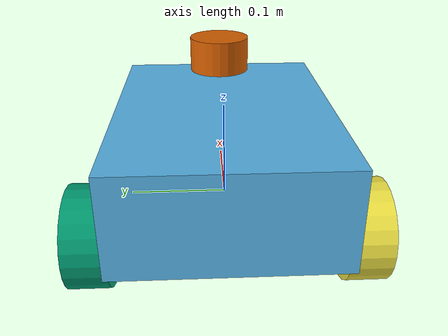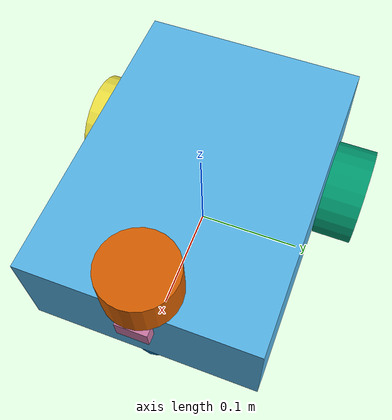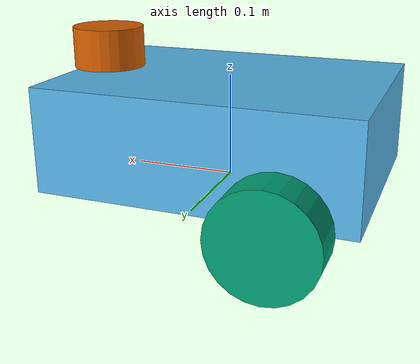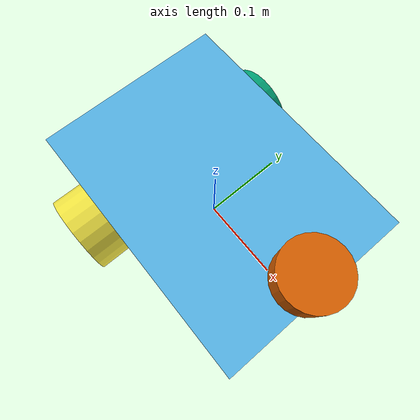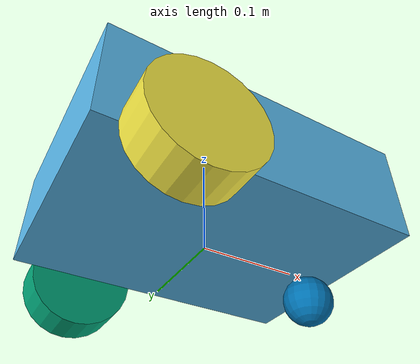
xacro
<?xml version="1.0"?>
<robot name="warehouse_robot" xmlns:xacro="http://www.ros.org/wiki/xacro">

<link name="base_footprint"/>

  <joint name="base_footprint_joint" type="fixed">
    <parent link="base_footprint"/>
    <child link="base_link"/>
    <origin xyz="0 0 0.05" rpy="0 0 0"/>
  </joint>

<link name="base_link">

    <visual>
      <geometry>
        <box size="0.30 0.22 0.10"/>
      </geometry>
    </visual>

    <collision>
      <geometry>
        <box size="0.30 0.22 0.10"/>
      </geometry>
    </collision>

    <inertial>
      <mass value="2.5"/>
      <origin xyz="0 0 0" rpy="0 0 0"/>
      <inertia ixx="0.01217" ixy="0.0" ixz="0.0" iyy="0.02083" iyz="0.0" izz="0.02883"/>
    </inertial>

  </link>

<link name="left_wheel_link">
    <visual>
      <origin xyz="0 0 0" rpy="1.5708 0 0"/>
      <geometry>
        <cylinder radius="0.05" length="0.04"/>
      </geometry>
    </visual>
    <collision>
      <origin xyz="0 0 0" rpy="1.5708 0 0"/>
      <geometry>
        <cylinder radius="0.05" length="0.04"/>
      </geometry>
    </collision>
    <inertial>
      <mass value="0.3"/>
      <origin xyz="0 0 0" rpy="0 0 0"/>
      <inertia ixx="0.0003" ixy="0.0" ixz="0.0" iyy="0.0003" iyz="0.0" izz="0.00038"/>
    </inertial>
  </link>

  <joint name="left_wheel_joint" type="continuous">
    <parent link="base_link"/>
    <child link="left_wheel_link"/>
    <origin xyz="-0.08 0.13 -0.05" rpy="0 0 0"/>
    <axis xyz="0 1 0"/>
  </joint>

<link name="right_wheel_link">
    <visual>
      <origin xyz="0 0 0" rpy="-1.5708 0 0"/>
      <geometry>
        <cylinder radius="0.05" length="0.04"/>
      </geometry>
    </visual>
    <collision>
      <origin xyz="0 0 0" rpy="-1.5708 0 0"/>
      <geometry>
        <cylinder radius="0.05" length="0.04"/>
      </geometry>
    </collision>
    <inertial>
      <mass value="0.3"/>
      <origin xyz="0 0 0" rpy="0 0 0"/>
      <inertia ixx="0.0003" ixy="0.0" ixz="0.0" iyy="0.0003" iyz="0.0" izz="0.00038"/>
    </inertial>
  </link>

  <joint name="right_wheel_joint" type="continuous">
    <parent link="base_link"/>
    <child link="right_wheel_link"/>
    <origin xyz="-0.08 -0.13 -0.05" rpy="0 0 0"/>
    <axis xyz="0 1 0"/>
  </joint>

<link name="caster_wheel_link">
    <visual>
      <geometry>
        <sphere radius="0.025"/>
      </geometry>
    </visual>
    <collision>
      <geometry>
        <sphere radius="0.025"/>      </geometry>
    </collision>
    <inertial>
      <mass value="0.05"/>
      <origin xyz="0 0 0" rpy="0 0 0"/>
      <inertia ixx="0.0001" ixy="0.0" ixz="0.0" iyy="0.0001" iyz="0.0" izz="0.0001"/>
    </inertial>
  </link>

  <joint name="caster_wheel_joint" type="fixed">
    <parent link="base_link"/>
    <child link="caster_wheel_link"/>
    <origin xyz="0.12 0 -0.075" rpy="0 0 0"/>
  </joint>

<link name="lidar_link">
    <visual>
      <geometry>
        <cylinder radius="0.035" length="0.04"/>
      </geometry>
    </visual>
    <collision>
      <geometry>
        <cylinder radius="0.035" length="0.04"/>
      </geometry>
    </collision>
    <inertial>
      <mass value="0.15"/>
      <origin xyz="0 0 0" rpy="0 0 0"/>
      <inertia ixx="0.0002" ixy="0.0" ixz="0.0" iyy="0.0002" iyz="0.0" izz="0.0002"/>
    </inertial>
  </link>

  <joint name="lidar_joint" type="fixed">
    <parent link="base_link"/>
    <child link="lidar_link"/>
    <origin xyz="0.13 0 0.07" rpy="0 0 0"/>
  </joint>

<gazebo reference="lidar_link">
    <sensor name="lidar_sensor" type="gpu_lidar">
      <pose>0 0 0 0 0 0</pose>
      <topic>scan</topic>
      <update_rate>10</update_rate>
      <ray>
        <scan>
          <horizontal>
            <samples>360</samples>
            <min_angle>-3.14159</min_angle>
            <max_angle>3.14159</max_angle>
          </horizontal>
        </scan>
        <range>
          <min>0.12</min>
          <max>10.0</max>
        </range>
      </ray>
      <always_on>true</always_on>
      <visualize>true</visualize>
    </sensor>
  </gazebo>

<link name="camera_link">
    <visual>
      <geometry>
        <box size="0.02 0.03 0.02"/>
      </geometry>
    </visual>
    <collision>
      <geometry>
        <box size="0.02 0.03 0.02"/>
      </geometry>
    </collision>
    <inertial>
      <mass value="0.03"/>
      <origin xyz="0 0 0" rpy="0 0 0"/>
      <inertia ixx="0.00002" ixy="0.0" ixz="0.0" iyy="0.00002" iyz="0.0" izz="0.00002"/>
    </inertial>
  </link>

  <joint name="camera_joint" type="fixed">
    <parent link="base_link"/>
    <child link="camera_link"/>
    <origin xyz="0.15 0 0.02" rpy="0 0 0"/>
  </joint>

 <gazebo reference="camera_link">
    <sensor name="camera_sensor" type="camera">
      <pose>0 0 0 0 0 0</pose>
      <topic>image_raw</topic>
      <update_rate>30</update_rate>
      <camera>
        <horizontal_fov>1.047</horizontal_fov>
        <image>
          <width>640</width>
          <height>480</height>
          <format>R8G8B8</format>
        </image>
        <clip>
          <near>0.05</near>
          <far>10.0</far>
        </clip>
        <optical_frame_id>camera_optical_link</optical_frame_id>
      </camera>
      <always_on>true</always_on>
      <visualize>true</visualize>
    </sensor>
  </gazebo>

<link name="camera_optical_link"/>

  <joint name="camera_optical_joint" type="fixed">
    <parent link="camera_link"/>
    <child link="camera_optical_link"/>
    <origin xyz="0 0 0" rpy="-1.5708 0 -1.5708"/>
  </joint>

<link name="imu_link">
    <visual>
      <geometry>
        <box size="0.02 0.02 0.01"/>
      </geometry>
    </visual>
    <inertial>
      <mass value="0.01"/>
      <origin xyz="0 0 0" rpy="0 0 0"/>
      <inertia ixx="0.00001" ixy="0.0" ixz="0.0" iyy="0.00001" iyz="0.0" izz="0.00001"/>
    </inertial>
  </link>

  <joint name="imu_joint" type="fixed">
    <parent link="base_link"/>
    <child link="imu_link"/>
    <origin xyz="0 0 0" rpy="0 0 0"/>
  </joint>

<gazebo reference="imu_link">
    <sensor name="imu_sensor" type="imu">
      <pose>0 0 0 0 0 0</pose>
      <topic>imu</topic>
      <update_rate>50</update_rate>
      <always_on>true</always_on>
    </sensor>
  </gazebo>

<gazebo>
    <plugin
      filename="gz-sim-diff-drive-system"
      name="gz::sim::systems::DiffDrive">
      <left_joint>left_wheel_joint</left_joint>
      <right_joint>right_wheel_joint</right_joint>
      <wheel_separation>0.26</wheel_separation>
      <wheel_radius>0.05</wheel_radius>
      <odom_publish_frequency>30</odom_publish_frequency>
      <topic>cmd_vel</topic>
      <odom_topic>odom</odom_topic>
      <frame_id>odom</frame_id>
      <child_frame_id>base_footprint</child_frame_id>
    </plugin>
  </gazebo>

</robot>
